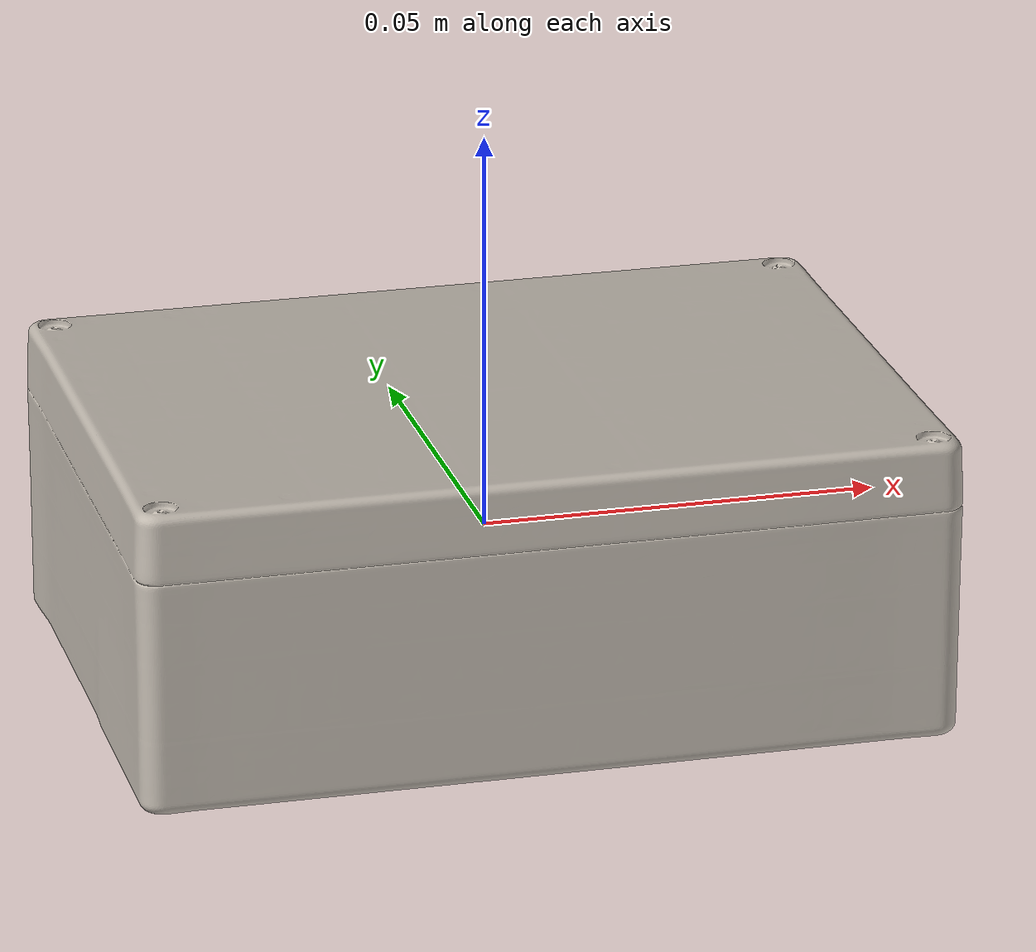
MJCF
<mujoco model="aluminum_box">
  <asset>
    <texture file="robosuite/models/assets/textures/aluminum_box_1.png" type="2d" name="aluminum-box" />
    <material name="MatAluminum" texture="aluminum-box" texrepeat="3 3" specular="0.6" shininess="0.2" />
    <mesh file="robosuite/models/assets/objects/meshes/aluminum_box_1.obj" name="aluminum_box_1_mesh" scale="1.2 1.2 1.2"/>
  </asset>
  <worldbody>
    <body>
      <body name="object">
        <geom pos="0 0 0" mesh="aluminum_box_1_mesh" type="mesh" solimp="0.998 0.998 0.001" solref="0.001 1" density="50" friction="0.95 0.3 0.1" material="MatAluminum" group="1"/>
        <geom pos="0 0 0" mesh="aluminum_box_1_mesh" type="mesh" solimp="0.998 0.998 0.001" solref="0.001 1" density="50" friction="0.95 0.3 0.1" material="MatAluminum" group="0"/>
      </body>
      <site rgba="0 0 0 0" size="0.006" pos="0 0 -0.01897212" name="bottom_site"/>
      <site rgba="0 0 0 0" size="0.006" pos="0 0 0.01897212" name="top_site"/>
      <site rgba="0 0 0 0" size="0.006" pos="0.05060496 0.05060496 0" name="horizontal_radius_site"/>
    </body>
  </worldbody>
</mujoco>
